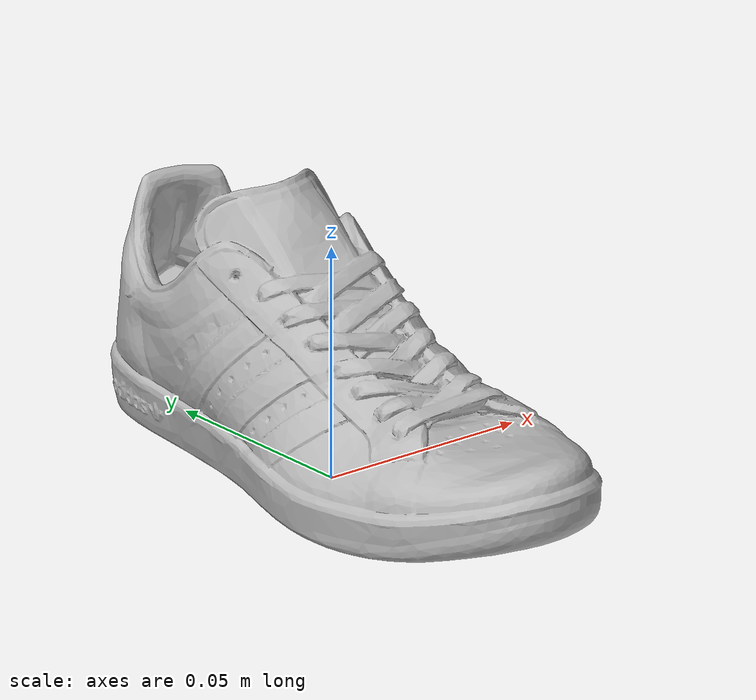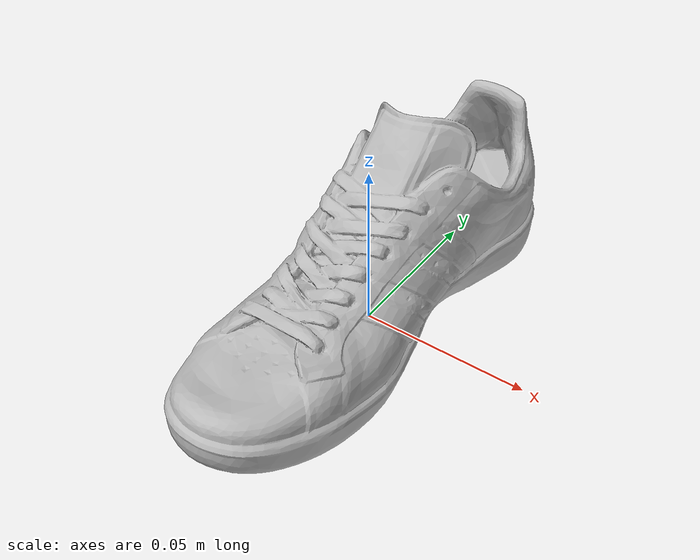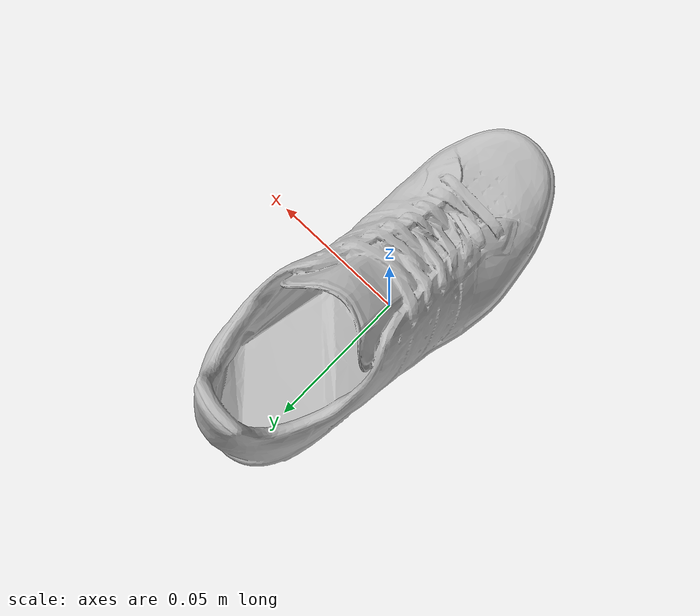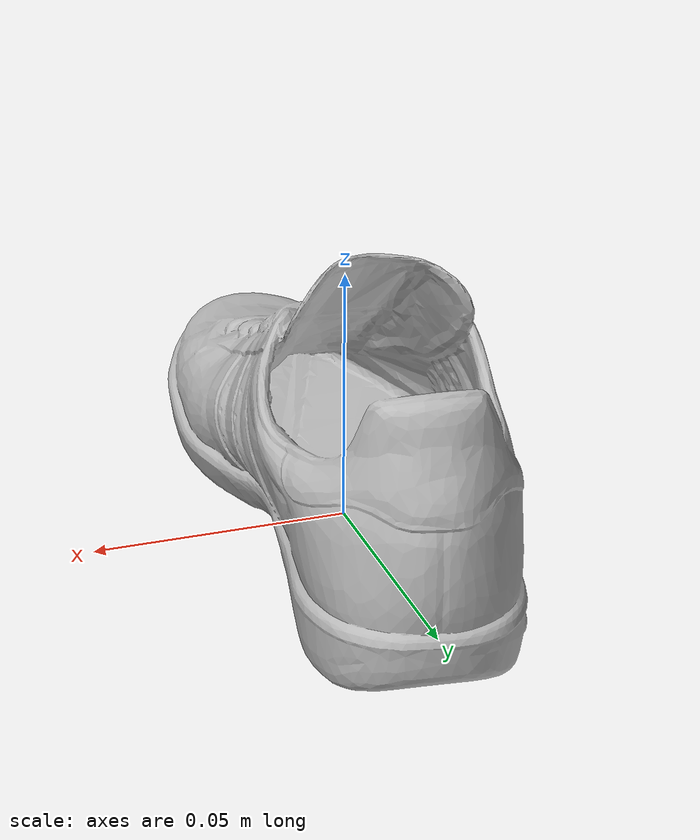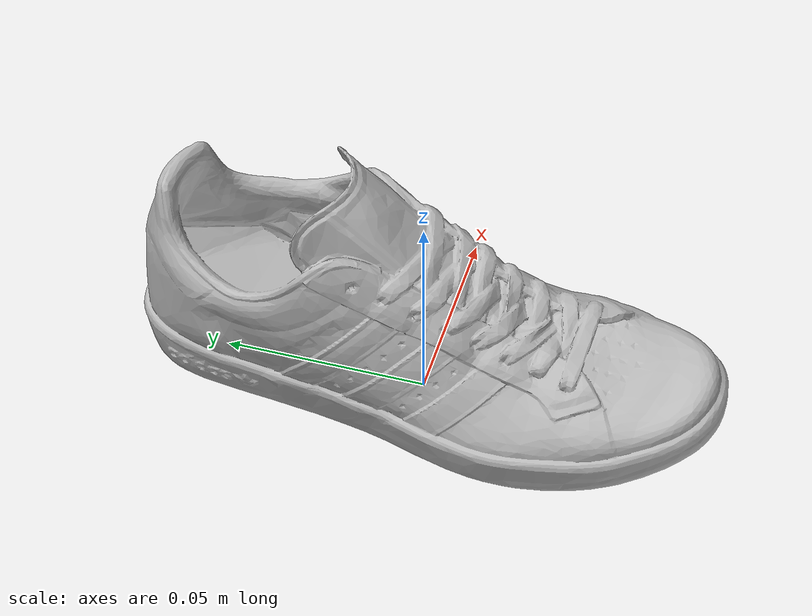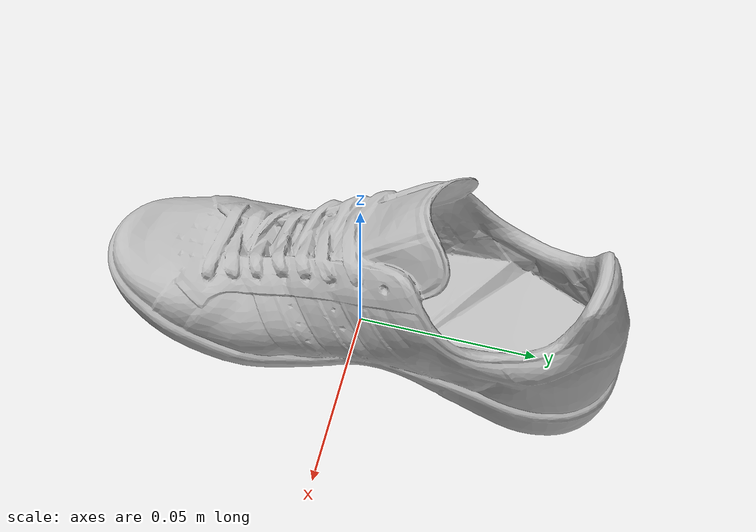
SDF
<?xml version="1.0" ?>
<sdf version="1.6">
  <world name='default'>
    <model name="shoe_right">
      <link name="link_right">
        <inertial>
          <mass>0.2</mass>
          <inertia>
            <ixx>1</ixx>
            <ixy>0</ixy>
            <ixz>0</ixz>
            <iyy>1</iyy>
            <iyz>0</iyz>
            <izz>1</izz>
          </inertia>
        </inertial>
        <visual name="visual">
          <geometry>
            <mesh>
              <uri>meshes/shoe_right.obj</uri>
              <scale>0.5 0.5 0.5</scale>
            </mesh>
          </geometry>
        </visual>
        <collision name="collision_right">
          <pose>0 0 0.025 0 0 0</pose>
          <geometry>
            <box>
              <size>0.05 0.1 0.05</size>
            </box>
          </geometry>
        </collision>
      </link>
    </model>
  </world>
</sdf>
